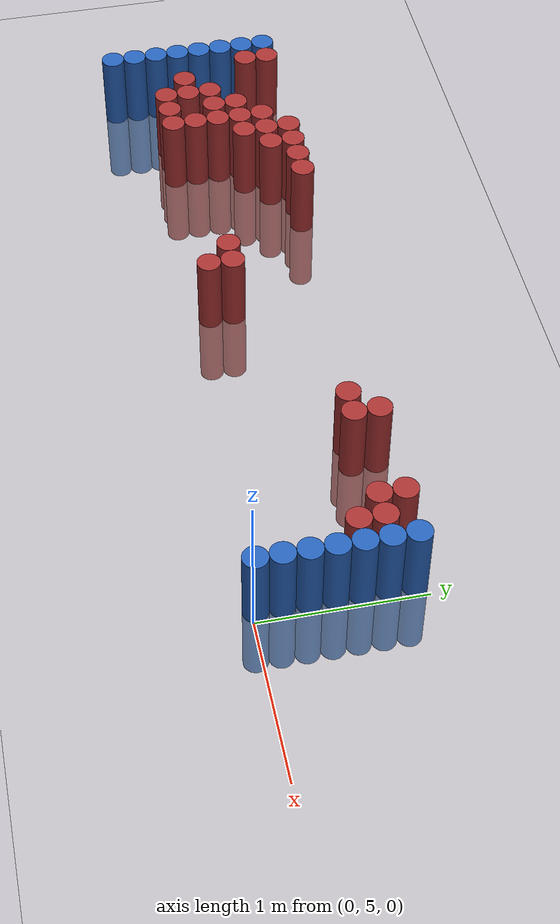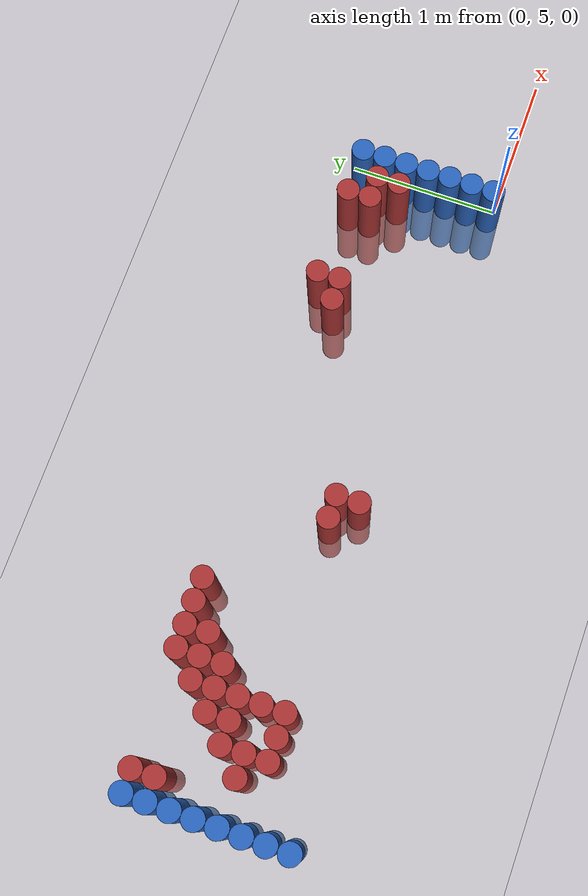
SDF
<sdf version="1.6">
 <world name="default">
  <model name="ground_plane">
   <static>1</static>
   <link name="link">
    <collision name="collision">
     <geometry><plane><normal>0 0 1</normal><size>100 100</size></plane></geometry>
     <surface><friction><ode><mu>100</mu><mu2>50</mu2></ode></friction></surface>
    </collision>
    <visual name="visual">
     <cast_shadows>0</cast_shadows>
     <geometry><plane><normal>0 0 1</normal><size>100 100</size></plane></geometry>
     <material>
      <script><uri>file://media/materials/scripts/gazebo.material</uri><name>Gazebo/Grey</name></script>
     </material>
    </visual>
   </link>
  </model>
  <model name="unit_cylinder_93">
   <static>1</static>
   <pose>-4.425000 4.875000 0.000000 0.000000 0.000000 0.000000</pose>
   <link name="link">
    <inertial>
     <mass>1</mass>
     <inertia><ixx>0.145833</ixx><ixy>0</ixy><ixz>0</ixz><iyy>0.145833</iyy><iyz>0</iyz><izz>0.125</izz></inertia>
    </inertial>
    <collision name="collision">
     <geometry><cylinder><radius>0.075000</radius><length>1</length></cylinder></geometry>
    </collision>
    <visual name="visual">
     <geometry><cylinder><radius>0.075000</radius><length>1</length></cylinder></geometry>
     <material>
      <ambient>0.152000 0.379000 0.720000 1</ambient>
      <diffuse>0.152000 0.379000 0.720000 1</diffuse>
     </material>
     <material>
      <script><name>Gazebo/Grey</name><uri>file://media/materials/scripts/gazebo.material</uri></script>
     </material>
    </visual>
   </link>
  </model>
  <model name="unit_cylinder_94">
   <static>1</static>
   <pose>-0.075000 5.025000 0.000000 0.000000 0.000000 0.000000</pose>
   <link name="link">
    <inertial>
     <mass>1</mass>
     <inertia><ixx>0.145833</ixx><ixy>0</ixy><ixz>0</ixz><iyy>0.145833</iyy><iyz>0</iyz><izz>0.125</izz></inertia>
    </inertial>
    <collision name="collision">
     <geometry><cylinder><radius>0.075000</radius><length>1</length></cylinder></geometry>
    </collision>
    <visual name="visual">
     <geometry><cylinder><radius>0.075000</radius><length>1</length></cylinder></geometry>
     <material>
      <ambient>0.152000 0.379000 0.720000 1</ambient>
      <diffuse>0.152000 0.379000 0.720000 1</diffuse>
     </material>
     <material>
      <script><name>Gazebo/Grey</name><uri>file://media/materials/scripts/gazebo.material</uri></script>
     </material>
    </visual>
   </link>
  </model>
  <model name="unit_cylinder_95">
   <static>1</static>
   <pose>-4.425000 5.025000 0.000000 0.000000 0.000000 0.000000</pose>
   <link name="link">
    <inertial>
     <mass>1</mass>
     <inertia><ixx>0.145833</ixx><ixy>0</ixy><ixz>0</ixz><iyy>0.145833</iyy><iyz>0</iyz><izz>0.125</izz></inertia>
    </inertial>
    <collision name="collision">
     <geometry><cylinder><radius>0.075000</radius><length>1</length></cylinder></geometry>
    </collision>
    <visual name="visual">
     <geometry><cylinder><radius>0.075000</radius><length>1</length></cylinder></geometry>
     <material>
      <ambient>0.152000 0.379000 0.720000 1</ambient>
      <diffuse>0.152000 0.379000 0.720000 1</diffuse>
     </material>
     <material>
      <script><name>Gazebo/Grey</name><uri>file://media/materials/scripts/gazebo.material</uri></script>
     </material>
    </visual>
   </link>
  </model>
  <model name="unit_cylinder_96">
   <static>1</static>
   <pose>-4.425000 5.175000 0.000000 0.000000 0.000000 0.000000</pose>
   <link name="link">
    <inertial>
     <mass>1</mass>
     <inertia><ixx>0.145833</ixx><ixy>0</ixy><ixz>0</ixz><iyy>0.145833</iyy><iyz>0</iyz><izz>0.125</izz></inertia>
    </inertial>
    <collision name="collision">
     <geometry><cylinder><radius>0.075000</radius><length>1</length></cylinder></geometry>
    </collision>
    <visual name="visual">
     <geometry><cylinder><radius>0.075000</radius><length>1</length></cylinder></geometry>
     <material>
      <ambient>0.152000 0.379000 0.720000 1</ambient>
      <diffuse>0.152000 0.379000 0.720000 1</diffuse>
     </material>
     <material>
      <script><name>Gazebo/Grey</name><uri>file://media/materials/scripts/gazebo.material</uri></script>
     </material>
    </visual>
   </link>
  </model>
  <model name="unit_cylinder_97">
   <static>1</static>
   <pose>-4.425000 5.325000 0.000000 0.000000 0.000000 0.000000</pose>
   <link name="link">
    <inertial>
     <mass>1</mass>
     <inertia><ixx>0.145833</ixx><ixy>0</ixy><ixz>0</ixz><iyy>0.145833</iyy><iyz>0</iyz><izz>0.125</izz></inertia>
    </inertial>
    <collision name="collision">
     <geometry><cylinder><radius>0.075000</radius><length>1</length></cylinder></geometry>
    </collision>
    <visual name="visual">
     <geometry><cylinder><radius>0.075000</radius><length>1</length></cylinder></geometry>
     <material>
      <ambient>0.152000 0.379000 0.720000 1</ambient>
      <diffuse>0.152000 0.379000 0.720000 1</diffuse>
     </material>
     <material>
      <script><name>Gazebo/Grey</name><uri>file://media/materials/scripts/gazebo.material</uri></script>
     </material>
    </visual>
   </link>
  </model>
  <model name="unit_cylinder_98">
   <static>1</static>
   <pose>-4.425000 5.475000 0.000000 0.000000 0.000000 0.000000</pose>
   <link name="link">
    <inertial>
     <mass>1</mass>
     <inertia><ixx>0.145833</ixx><ixy>0</ixy><ixz>0</ixz><iyy>0.145833</iyy><iyz>0</iyz><izz>0.125</izz></inertia>
    </inertial>
    <collision name="collision">
     <geometry><cylinder><radius>0.075000</radius><length>1</length></cylinder></geometry>
    </collision>
    <visual name="visual">
     <geometry><cylinder><radius>0.075000</radius><length>1</length></cylinder></geometry>
     <material>
      <ambient>0.152000 0.379000 0.720000 1</ambient>
      <diffuse>0.152000 0.379000 0.720000 1</diffuse>
     </material>
     <material>
      <script><name>Gazebo/Grey</name><uri>file://media/materials/scripts/gazebo.material</uri></script>
     </material>
    </visual>
   </link>
  </model>
  <model name="unit_cylinder_99">
   <static>1</static>
   <pose>-4.425000 5.625000 0.000000 0.000000 0.000000 0.000000</pose>
   <link name="link">
    <inertial>
     <mass>1</mass>
     <inertia><ixx>0.145833</ixx><ixy>0</ixy><ixz>0</ixz><iyy>0.145833</iyy><iyz>0</iyz><izz>0.125</izz></inertia>
    </inertial>
    <collision name="collision">
     <geometry><cylinder><radius>0.075000</radius><length>1</length></cylinder></geometry>
    </collision>
    <visual name="visual">
     <geometry><cylinder><radius>0.075000</radius><length>1</length></cylinder></geometry>
     <material>
      <ambient>0.152000 0.379000 0.720000 1</ambient>
      <diffuse>0.152000 0.379000 0.720000 1</diffuse>
     </material>
     <material>
      <script><name>Gazebo/Grey</name><uri>file://media/materials/scripts/gazebo.material</uri></script>
     </material>
    </visual>
   </link>
  </model>
  <model name="unit_cylinder_100">
   <static>1</static>
   <pose>-4.425000 5.775000 0.000000 0.000000 0.000000 0.000000</pose>
   <link name="link">
    <inertial>
     <mass>1</mass>
     <inertia><ixx>0.145833</ixx><ixy>0</ixy><ixz>0</ixz><iyy>0.145833</iyy><iyz>0</iyz><izz>0.125</izz></inertia>
    </inertial>
    <collision name="collision">
     <geometry><cylinder><radius>0.075000</radius><length>1</length></cylinder></geometry>
    </collision>
    <visual name="visual">
     <geometry><cylinder><radius>0.075000</radius><length>1</length></cylinder></geometry>
     <material>
      <ambient>0.152000 0.379000 0.720000 1</ambient>
      <diffuse>0.152000 0.379000 0.720000 1</diffuse>
     </material>
     <material>
      <script><name>Gazebo/Grey</name><uri>file://media/materials/scripts/gazebo.material</uri></script>
     </material>
    </visual>
   </link>
  </model>
  <model name="unit_cylinder_101">
   <static>1</static>
   <pose>-4.425000 5.925000 0.000000 0.000000 0.000000 0.000000</pose>
   <link name="link">
    <inertial>
     <mass>1</mass>
     <inertia><ixx>0.145833</ixx><ixy>0</ixy><ixz>0</ixz><iyy>0.145833</iyy><iyz>0</iyz><izz>0.125</izz></inertia>
    </inertial>
    <collision name="collision">
     <geometry><cylinder><radius>0.075000</radius><length>1</length></cylinder></geometry>
    </collision>
    <visual name="visual">
     <geometry><cylinder><radius>0.075000</radius><length>1</length></cylinder></geometry>
     <material>
      <ambient>0.152000 0.379000 0.720000 1</ambient>
      <diffuse>0.152000 0.379000 0.720000 1</diffuse>
     </material>
     <material>
      <script><name>Gazebo/Grey</name><uri>file://media/materials/scripts/gazebo.material</uri></script>
     </material>
    </visual>
   </link>
  </model>
  <model name="unit_cylinder_126">
   <static>1</static>
   <pose>-4.275000 5.775000 0.000000 0.000000 0.000000 0.000000</pose>
   <link name="link">
    <inertial>
     <mass>1</mass>
     <inertia><ixx>0.145833</ixx><ixy>0</ixy><ixz>0</ixz><iyy>0.145833</iyy><iyz>0</iyz><izz>0.125</izz></inertia>
    </inertial>
    <collision name="collision">
     <geometry><cylinder><radius>0.075000</radius><length>1</length></cylinder></geometry>
    </collision>
    <visual name="visual">
     <geometry><cylinder><radius>0.075000</radius><length>1</length></cylinder></geometry>
     <material>
      <ambient>0.648000 0.192000 0.192000 1</ambient>
      <diffuse>0.648000 0.192000 0.192000 1</diffuse>
     </material>
     <material>
      <script><name>Gazebo/Grey</name><uri>file://media/materials/scripts/gazebo.material</uri></script>
     </material>
    </visual>
   </link>
  </model>
  <model name="unit_cylinder_127">
   <static>1</static>
   <pose>-4.275000 5.925000 0.000000 0.000000 0.000000 0.000000</pose>
   <link name="link">
    <inertial>
     <mass>1</mass>
     <inertia><ixx>0.145833</ixx><ixy>0</ixy><ixz>0</ixz><iyy>0.145833</iyy><iyz>0</iyz><izz>0.125</izz></inertia>
    </inertial>
    <collision name="collision">
     <geometry><cylinder><radius>0.075000</radius><length>1</length></cylinder></geometry>
    </collision>
    <visual name="visual">
     <geometry><cylinder><radius>0.075000</radius><length>1</length></cylinder></geometry>
     <material>
      <ambient>0.648000 0.192000 0.192000 1</ambient>
      <diffuse>0.648000 0.192000 0.192000 1</diffuse>
     </material>
     <material>
      <script><name>Gazebo/Grey</name><uri>file://media/materials/scripts/gazebo.material</uri></script>
     </material>
    </visual>
   </link>
  </model>
  <model name="unit_cylinder_138">
   <static>1</static>
   <pose>-4.125000 5.325000 0.000000 0.000000 0.000000 0.000000</pose>
   <link name="link">
    <inertial>
     <mass>1</mass>
     <inertia><ixx>0.145833</ixx><ixy>0</ixy><ixz>0</ixz><iyy>0.145833</iyy><iyz>0</iyz><izz>0.125</izz></inertia>
    </inertial>
    <collision name="collision">
     <geometry><cylinder><radius>0.075000</radius><length>1</length></cylinder></geometry>
    </collision>
    <visual name="visual">
     <geometry><cylinder><radius>0.075000</radius><length>1</length></cylinder></geometry>
     <material>
      <ambient>0.648000 0.192000 0.192000 1</ambient>
      <diffuse>0.648000 0.192000 0.192000 1</diffuse>
     </material>
     <material>
      <script><name>Gazebo/Grey</name><uri>file://media/materials/scripts/gazebo.material</uri></script>
     </material>
    </visual>
   </link>
  </model>
  <model name="unit_cylinder_146">
   <static>1</static>
   <pose>-3.975000 5.175000 0.000000 0.000000 0.000000 0.000000</pose>
   <link name="link">
    <inertial>
     <mass>1</mass>
     <inertia><ixx>0.145833</ixx><ixy>0</ixy><ixz>0</ixz><iyy>0.145833</iyy><iyz>0</iyz><izz>0.125</izz></inertia>
    </inertial>
    <collision name="collision">
     <geometry><cylinder><radius>0.075000</radius><length>1</length></cylinder></geometry>
    </collision>
    <visual name="visual">
     <geometry><cylinder><radius>0.075000</radius><length>1</length></cylinder></geometry>
     <material>
      <ambient>0.648000 0.192000 0.192000 1</ambient>
      <diffuse>0.648000 0.192000 0.192000 1</diffuse>
     </material>
     <material>
      <script><name>Gazebo/Grey</name><uri>file://media/materials/scripts/gazebo.material</uri></script>
     </material>
    </visual>
   </link>
  </model>
  <model name="unit_cylinder_147">
   <static>1</static>
   <pose>-3.975000 5.325000 0.000000 0.000000 0.000000 0.000000</pose>
   <link name="link">
    <inertial>
     <mass>1</mass>
     <inertia><ixx>0.145833</ixx><ixy>0</ixy><ixz>0</ixz><iyy>0.145833</iyy><iyz>0</iyz><izz>0.125</izz></inertia>
    </inertial>
    <collision name="collision">
     <geometry><cylinder><radius>0.075000</radius><length>1</length></cylinder></geometry>
    </collision>
    <visual name="visual">
     <geometry><cylinder><radius>0.075000</radius><length>1</length></cylinder></geometry>
     <material>
      <ambient>0.648000 0.192000 0.192000 1</ambient>
      <diffuse>0.648000 0.192000 0.192000 1</diffuse>
     </material>
     <material>
      <script><name>Gazebo/Grey</name><uri>file://media/materials/scripts/gazebo.material</uri></script>
     </material>
    </visual>
   </link>
  </model>
  <model name="unit_cylinder_148">
   <static>1</static>
   <pose>-3.975000 5.475000 0.000000 0.000000 0.000000 0.000000</pose>
   <link name="link">
    <inertial>
     <mass>1</mass>
     <inertia><ixx>0.145833</ixx><ixy>0</ixy><ixz>0</ixz><iyy>0.145833</iyy><iyz>0</iyz><izz>0.125</izz></inertia>
    </inertial>
    <collision name="collision">
     <geometry><cylinder><radius>0.075000</radius><length>1</length></cylinder></geometry>
    </collision>
    <visual name="visual">
     <geometry><cylinder><radius>0.075000</radius><length>1</length></cylinder></geometry>
     <material>
      <ambient>0.648000 0.192000 0.192000 1</ambient>
      <diffuse>0.648000 0.192000 0.192000 1</diffuse>
     </material>
     <material>
      <script><name>Gazebo/Grey</name><uri>file://media/materials/scripts/gazebo.material</uri></script>
     </material>
    </visual>
   </link>
  </model>
  <model name="unit_cylinder_151">
   <static>1</static>
   <pose>-3.825000 5.175000 0.000000 0.000000 0.000000 0.000000</pose>
   <link name="link">
    <inertial>
     <mass>1</mass>
     <inertia><ixx>0.145833</ixx><ixy>0</ixy><ixz>0</ixz><iyy>0.145833</iyy><iyz>0</iyz><izz>0.125</izz></inertia>
    </inertial>
    <collision name="collision">
     <geometry><cylinder><radius>0.075000</radius><length>1</length></cylinder></geometry>
    </collision>
    <visual name="visual">
     <geometry><cylinder><radius>0.075000</radius><length>1</length></cylinder></geometry>
     <material>
      <ambient>0.648000 0.192000 0.192000 1</ambient>
      <diffuse>0.648000 0.192000 0.192000 1</diffuse>
     </material>
     <material>
      <script><name>Gazebo/Grey</name><uri>file://media/materials/scripts/gazebo.material</uri></script>
     </material>
    </visual>
   </link>
  </model>
  <model name="unit_cylinder_152">
   <static>1</static>
   <pose>-3.825000 5.475000 0.000000 0.000000 0.000000 0.000000</pose>
   <link name="link">
    <inertial>
     <mass>1</mass>
     <inertia><ixx>0.145833</ixx><ixy>0</ixy><ixz>0</ixz><iyy>0.145833</iyy><iyz>0</iyz><izz>0.125</izz></inertia>
    </inertial>
    <collision name="collision">
     <geometry><cylinder><radius>0.075000</radius><length>1</length></cylinder></geometry>
    </collision>
    <visual name="visual">
     <geometry><cylinder><radius>0.075000</radius><length>1</length></cylinder></geometry>
     <material>
      <ambient>0.648000 0.192000 0.192000 1</ambient>
      <diffuse>0.648000 0.192000 0.192000 1</diffuse>
     </material>
     <material>
      <script><name>Gazebo/Grey</name><uri>file://media/materials/scripts/gazebo.material</uri></script>
     </material>
    </visual>
   </link>
  </model>
  <model name="unit_cylinder_153">
   <static>1</static>
   <pose>-3.825000 5.625000 0.000000 0.000000 0.000000 0.000000</pose>
   <link name="link">
    <inertial>
     <mass>1</mass>
     <inertia><ixx>0.145833</ixx><ixy>0</ixy><ixz>0</ixz><iyy>0.145833</iyy><iyz>0</iyz><izz>0.125</izz></inertia>
    </inertial>
    <collision name="collision">
     <geometry><cylinder><radius>0.075000</radius><length>1</length></cylinder></geometry>
    </collision>
    <visual name="visual">
     <geometry><cylinder><radius>0.075000</radius><length>1</length></cylinder></geometry>
     <material>
      <ambient>0.648000 0.192000 0.192000 1</ambient>
      <diffuse>0.648000 0.192000 0.192000 1</diffuse>
     </material>
     <material>
      <script><name>Gazebo/Grey</name><uri>file://media/materials/scripts/gazebo.material</uri></script>
     </material>
    </visual>
   </link>
  </model>
  <model name="unit_cylinder_154">
   <static>1</static>
   <pose>-3.675000 5.175000 0.000000 0.000000 0.000000 0.000000</pose>
   <link name="link">
    <inertial>
     <mass>1</mass>
     <inertia><ixx>0.145833</ixx><ixy>0</ixy><ixz>0</ixz><iyy>0.145833</iyy><iyz>0</iyz><izz>0.125</izz></inertia>
    </inertial>
    <collision name="collision">
     <geometry><cylinder><radius>0.075000</radius><length>1</length></cylinder></geometry>
    </collision>
    <visual name="visual">
     <geometry><cylinder><radius>0.075000</radius><length>1</length></cylinder></geometry>
     <material>
      <ambient>0.648000 0.192000 0.192000 1</ambient>
      <diffuse>0.648000 0.192000 0.192000 1</diffuse>
     </material>
     <material>
      <script><name>Gazebo/Grey</name><uri>file://media/materials/scripts/gazebo.material</uri></script>
     </material>
    </visual>
   </link>
  </model>
  <model name="unit_cylinder_155">
   <static>1</static>
   <pose>-3.675000 5.325000 0.000000 0.000000 0.000000 0.000000</pose>
   <link name="link">
    <inertial>
     <mass>1</mass>
     <inertia><ixx>0.145833</ixx><ixy>0</ixy><ixz>0</ixz><iyy>0.145833</iyy><iyz>0</iyz><izz>0.125</izz></inertia>
    </inertial>
    <collision name="collision">
     <geometry><cylinder><radius>0.075000</radius><length>1</length></cylinder></geometry>
    </collision>
    <visual name="visual">
     <geometry><cylinder><radius>0.075000</radius><length>1</length></cylinder></geometry>
     <material>
      <ambient>0.648000 0.192000 0.192000 1</ambient>
      <diffuse>0.648000 0.192000 0.192000 1</diffuse>
     </material>
     <material>
      <script><name>Gazebo/Grey</name><uri>file://media/materials/scripts/gazebo.material</uri></script>
     </material>
    </visual>
   </link>
  </model>
  <model name="unit_cylinder_156">
   <static>1</static>
   <pose>-3.675000 5.475000 0.000000 0.000000 0.000000 0.000000</pose>
   <link name="link">
    <inertial>
     <mass>1</mass>
     <inertia><ixx>0.145833</ixx><ixy>0</ixy><ixz>0</ixz><iyy>0.145833</iyy><iyz>0</iyz><izz>0.125</izz></inertia>
    </inertial>
    <collision name="collision">
     <geometry><cylinder><radius>0.075000</radius><length>1</length></cylinder></geometry>
    </collision>
    <visual name="visual">
     <geometry><cylinder><radius>0.075000</radius><length>1</length></cylinder></geometry>
     <material>
      <ambient>0.648000 0.192000 0.192000 1</ambient>
      <diffuse>0.648000 0.192000 0.192000 1</diffuse>
     </material>
     <material>
      <script><name>Gazebo/Grey</name><uri>file://media/materials/scripts/gazebo.material</uri></script>
     </material>
    </visual>
   </link>
  </model>
  <model name="unit_cylinder_157">
   <static>1</static>
   <pose>-3.675000 5.625000 0.000000 0.000000 0.000000 0.000000</pose>
   <link name="link">
    <inertial>
     <mass>1</mass>
     <inertia><ixx>0.145833</ixx><ixy>0</ixy><ixz>0</ixz><iyy>0.145833</iyy><iyz>0</iyz><izz>0.125</izz></inertia>
    </inertial>
    <collision name="collision">
     <geometry><cylinder><radius>0.075000</radius><length>1</length></cylinder></geometry>
    </collision>
    <visual name="visual">
     <geometry><cylinder><radius>0.075000</radius><length>1</length></cylinder></geometry>
     <material>
      <ambient>0.648000 0.192000 0.192000 1</ambient>
      <diffuse>0.648000 0.192000 0.192000 1</diffuse>
     </material>
     <material>
      <script><name>Gazebo/Grey</name><uri>file://media/materials/scripts/gazebo.material</uri></script>
     </material>
    </visual>
   </link>
  </model>
  <model name="unit_cylinder_158">
   <static>1</static>
   <pose>-3.675000 5.775000 0.000000 0.000000 0.000000 0.000000</pose>
   <link name="link">
    <inertial>
     <mass>1</mass>
     <inertia><ixx>0.145833</ixx><ixy>0</ixy><ixz>0</ixz><iyy>0.145833</iyy><iyz>0</iyz><izz>0.125</izz></inertia>
    </inertial>
    <collision name="collision">
     <geometry><cylinder><radius>0.075000</radius><length>1</length></cylinder></geometry>
    </collision>
    <visual name="visual">
     <geometry><cylinder><radius>0.075000</radius><length>1</length></cylinder></geometry>
     <material>
      <ambient>0.648000 0.192000 0.192000 1</ambient>
      <diffuse>0.648000 0.192000 0.192000 1</diffuse>
     </material>
     <material>
      <script><name>Gazebo/Grey</name><uri>file://media/materials/scripts/gazebo.material</uri></script>
     </material>
    </visual>
   </link>
  </model>
  <model name="unit_cylinder_159">
   <static>1</static>
   <pose>-3.525000 5.625000 0.000000 0.000000 0.000000 0.000000</pose>
   <link name="link">
    <inertial>
     <mass>1</mass>
     <inertia><ixx>0.145833</ixx><ixy>0</ixy><ixz>0</ixz><iyy>0.145833</iyy><iyz>0</iyz><izz>0.125</izz></inertia>
    </inertial>
    <collision name="collision">
     <geometry><cylinder><radius>0.075000</radius><length>1</length></cylinder></geometry>
    </collision>
    <visual name="visual">
     <geometry><cylinder><radius>0.075000</radius><length>1</length></cylinder></geometry>
     <material>
      <ambient>0.648000 0.192000 0.192000 1</ambient>
      <diffuse>0.648000 0.192000 0.192000 1</diffuse>
     </material>
     <material>
      <script><name>Gazebo/Grey</name><uri>file://media/materials/scripts/gazebo.material</uri></script>
     </material>
    </visual>
   </link>
  </model>
  <model name="unit_cylinder_160">
   <static>1</static>
   <pose>-3.525000 5.775000 0.000000 0.000000 0.000000 0.000000</pose>
   <link name="link">
    <inertial>
     <mass>1</mass>
     <inertia><ixx>0.145833</ixx><ixy>0</ixy><ixz>0</ixz><iyy>0.145833</iyy><iyz>0</iyz><izz>0.125</izz></inertia>
    </inertial>
    <collision name="collision">
     <geometry><cylinder><radius>0.075000</radius><length>1</length></cylinder></geometry>
    </collision>
    <visual name="visual">
     <geometry><cylinder><radius>0.075000</radius><length>1</length></cylinder></geometry>
     <material>
      <ambient>0.648000 0.192000 0.192000 1</ambient>
      <diffuse>0.648000 0.192000 0.192000 1</diffuse>
     </material>
     <material>
      <script><name>Gazebo/Grey</name><uri>file://media/materials/scripts/gazebo.material</uri></script>
     </material>
    </visual>
   </link>
  </model>
  <model name="unit_cylinder_161">
   <static>1</static>
   <pose>-3.525000 5.925000 0.000000 0.000000 0.000000 0.000000</pose>
   <link name="link">
    <inertial>
     <mass>1</mass>
     <inertia><ixx>0.145833</ixx><ixy>0</ixy><ixz>0</ixz><iyy>0.145833</iyy><iyz>0</iyz><izz>0.125</izz></inertia>
    </inertial>
    <collision name="collision">
     <geometry><cylinder><radius>0.075000</radius><length>1</length></cylinder></geometry>
    </collision>
    <visual name="visual">
     <geometry><cylinder><radius>0.075000</radius><length>1</length></cylinder></geometry>
     <material>
      <ambient>0.648000 0.192000 0.192000 1</ambient>
      <diffuse>0.648000 0.192000 0.192000 1</diffuse>
     </material>
     <material>
      <script><name>Gazebo/Grey</name><uri>file://media/materials/scripts/gazebo.material</uri></script>
     </material>
    </visual>
   </link>
  </model>
  <model name="unit_cylinder_166">
   <static>1</static>
   <pose>-3.375000 5.775000 0.000000 0.000000 0.000000 0.000000</pose>
   <link name="link">
    <inertial>
     <mass>1</mass>
     <inertia><ixx>0.145833</ixx><ixy>0</ixy><ixz>0</ixz><iyy>0.145833</iyy><iyz>0</iyz><izz>0.125</izz></inertia>
    </inertial>
    <collision name="collision">
     <geometry><cylinder><radius>0.075000</radius><length>1</length></cylinder></geometry>
    </collision>
    <visual name="visual">
     <geometry><cylinder><radius>0.075000</radius><length>1</length></cylinder></geometry>
     <material>
      <ambient>0.648000 0.192000 0.192000 1</ambient>
      <diffuse>0.648000 0.192000 0.192000 1</diffuse>
     </material>
     <material>
      <script><name>Gazebo/Grey</name><uri>file://media/materials/scripts/gazebo.material</uri></script>
     </material>
    </visual>
   </link>
  </model>
  <model name="unit_cylinder_167">
   <static>1</static>
   <pose>-3.375000 5.925000 0.000000 0.000000 0.000000 0.000000</pose>
   <link name="link">
    <inertial>
     <mass>1</mass>
     <inertia><ixx>0.145833</ixx><ixy>0</ixy><ixz>0</ixz><iyy>0.145833</iyy><iyz>0</iyz><izz>0.125</izz></inertia>
    </inertial>
    <collision name="collision">
     <geometry><cylinder><radius>0.075000</radius><length>1</length></cylinder></geometry>
    </collision>
    <visual name="visual">
     <geometry><cylinder><radius>0.075000</radius><length>1</length></cylinder></geometry>
     <material>
      <ambient>0.648000 0.192000 0.192000 1</ambient>
      <diffuse>0.648000 0.192000 0.192000 1</diffuse>
     </material>
     <material>
      <script><name>Gazebo/Grey</name><uri>file://media/materials/scripts/gazebo.material</uri></script>
     </material>
    </visual>
   </link>
  </model>
  <model name="unit_cylinder_175">
   <static>1</static>
   <pose>-3.225000 5.925000 0.000000 0.000000 0.000000 0.000000</pose>
   <link name="link">
    <inertial>
     <mass>1</mass>
     <inertia><ixx>0.145833</ixx><ixy>0</ixy><ixz>0</ixz><iyy>0.145833</iyy><iyz>0</iyz><izz>0.125</izz></inertia>
    </inertial>
    <collision name="collision">
     <geometry><cylinder><radius>0.075000</radius><length>1</length></cylinder></geometry>
    </collision>
    <visual name="visual">
     <geometry><cylinder><radius>0.075000</radius><length>1</length></cylinder></geometry>
     <material>
      <ambient>0.648000 0.192000 0.192000 1</ambient>
      <diffuse>0.648000 0.192000 0.192000 1</diffuse>
     </material>
     <material>
      <script><name>Gazebo/Grey</name><uri>file://media/materials/scripts/gazebo.material</uri></script>
     </material>
    </visual>
   </link>
  </model>
  <model name="unit_cylinder_184">
   <static>1</static>
   <pose>-3.075000 5.925000 0.000000 0.000000 0.000000 0.000000</pose>
   <link name="link">
    <inertial>
     <mass>1</mass>
     <inertia><ixx>0.145833</ixx><ixy>0</ixy><ixz>0</ixz><iyy>0.145833</iyy><iyz>0</iyz><izz>0.125</izz></inertia>
    </inertial>
    <collision name="collision">
     <geometry><cylinder><radius>0.075000</radius><length>1</length></cylinder></geometry>
    </collision>
    <visual name="visual">
     <geometry><cylinder><radius>0.075000</radius><length>1</length></cylinder></geometry>
     <material>
      <ambient>0.648000 0.192000 0.192000 1</ambient>
      <diffuse>0.648000 0.192000 0.192000 1</diffuse>
     </material>
     <material>
      <script><name>Gazebo/Grey</name><uri>file://media/materials/scripts/gazebo.material</uri></script>
     </material>
    </visual>
   </link>
  </model>
  <model name="unit_cylinder_198">
   <static>1</static>
   <pose>-2.475000 5.325000 0.000000 0.000000 0.000000 0.000000</pose>
   <link name="link">
    <inertial>
     <mass>1</mass>
     <inertia><ixx>0.145833</ixx><ixy>0</ixy><ixz>0</ixz><iyy>0.145833</iyy><iyz>0</iyz><izz>0.125</izz></inertia>
    </inertial>
    <collision name="collision">
     <geometry><cylinder><radius>0.075000</radius><length>1</length></cylinder></geometry>
    </collision>
    <visual name="visual">
     <geometry><cylinder><radius>0.075000</radius><length>1</length></cylinder></geometry>
     <material>
      <ambient>0.648000 0.192000 0.192000 1</ambient>
      <diffuse>0.648000 0.192000 0.192000 1</diffuse>
     </material>
     <material>
      <script><name>Gazebo/Grey</name><uri>file://media/materials/scripts/gazebo.material</uri></script>
     </material>
    </visual>
   </link>
  </model>
  <model name="unit_cylinder_201">
   <static>1</static>
   <pose>-2.325000 5.175000 0.000000 0.000000 0.000000 0.000000</pose>
   <link name="link">
    <inertial>
     <mass>1</mass>
     <inertia><ixx>0.145833</ixx><ixy>0</ixy><ixz>0</ixz><iyy>0.145833</iyy><iyz>0</iyz><izz>0.125</izz></inertia>
    </inertial>
    <collision name="collision">
     <geometry><cylinder><radius>0.075000</radius><length>1</length></cylinder></geometry>
    </collision>
    <visual name="visual">
     <geometry><cylinder><radius>0.075000</radius><length>1</length></cylinder></geometry>
     <material>
      <ambient>0.648000 0.192000 0.192000 1</ambient>
      <diffuse>0.648000 0.192000 0.192000 1</diffuse>
     </material>
     <material>
      <script><name>Gazebo/Grey</name><uri>file://media/materials/scripts/gazebo.material</uri></script>
     </material>
    </visual>
   </link>
  </model>
  <model name="unit_cylinder_202">
   <static>1</static>
   <pose>-2.325000 5.325000 0.000000 0.000000 0.000000 0.000000</pose>
   <link name="link">
    <inertial>
     <mass>1</mass>
     <inertia><ixx>0.145833</ixx><ixy>0</ixy><ixz>0</ixz><iyy>0.145833</iyy><iyz>0</iyz><izz>0.125</izz></inertia>
    </inertial>
    <collision name="collision">
     <geometry><cylinder><radius>0.075000</radius><length>1</length></cylinder></geometry>
    </collision>
    <visual name="visual">
     <geometry><cylinder><radius>0.075000</radius><length>1</length></cylinder></geometry>
     <material>
      <ambient>0.648000 0.192000 0.192000 1</ambient>
      <diffuse>0.648000 0.192000 0.192000 1</diffuse>
     </material>
     <material>
      <script><name>Gazebo/Grey</name><uri>file://media/materials/scripts/gazebo.material</uri></script>
     </material>
    </visual>
   </link>
  </model>
  <model name="unit_cylinder_206">
   <static>1</static>
   <pose>-1.125000 5.775000 0.000000 0.000000 0.000000 0.000000</pose>
   <link name="link">
    <inertial>
     <mass>1</mass>
     <inertia><ixx>0.145833</ixx><ixy>0</ixy><ixz>0</ixz><iyy>0.145833</iyy><iyz>0</iyz><izz>0.125</izz></inertia>
    </inertial>
    <collision name="collision">
     <geometry><cylinder><radius>0.075000</radius><length>1</length></cylinder></geometry>
    </collision>
    <visual name="visual">
     <geometry><cylinder><radius>0.075000</radius><length>1</length></cylinder></geometry>
     <material>
      <ambient>0.648000 0.192000 0.192000 1</ambient>
      <diffuse>0.648000 0.192000 0.192000 1</diffuse>
     </material>
     <material>
      <script><name>Gazebo/Grey</name><uri>file://media/materials/scripts/gazebo.material</uri></script>
     </material>
    </visual>
   </link>
  </model>
  <model name="unit_cylinder_214">
   <static>1</static>
   <pose>-0.975000 5.775000 0.000000 0.000000 0.000000 0.000000</pose>
   <link name="link">
    <inertial>
     <mass>1</mass>
     <inertia><ixx>0.145833</ixx><ixy>0</ixy><ixz>0</ixz><iyy>0.145833</iyy><iyz>0</iyz><izz>0.125</izz></inertia>
    </inertial>
    <collision name="collision">
     <geometry><cylinder><radius>0.075000</radius><length>1</length></cylinder></geometry>
    </collision>
    <visual name="visual">
     <geometry><cylinder><radius>0.075000</radius><length>1</length></cylinder></geometry>
     <material>
      <ambient>0.648000 0.192000 0.192000 1</ambient>
      <diffuse>0.648000 0.192000 0.192000 1</diffuse>
     </material>
     <material>
      <script><name>Gazebo/Grey</name><uri>file://media/materials/scripts/gazebo.material</uri></script>
     </material>
    </visual>
   </link>
  </model>
  <model name="unit_cylinder_215">
   <static>1</static>
   <pose>-0.975000 5.925000 0.000000 0.000000 0.000000 0.000000</pose>
   <link name="link">
    <inertial>
     <mass>1</mass>
     <inertia><ixx>0.145833</ixx><ixy>0</ixy><ixz>0</ixz><iyy>0.145833</iyy><iyz>0</iyz><izz>0.125</izz></inertia>
    </inertial>
    <collision name="collision">
     <geometry><cylinder><radius>0.075000</radius><length>1</length></cylinder></geometry>
    </collision>
    <visual name="visual">
     <geometry><cylinder><radius>0.075000</radius><length>1</length></cylinder></geometry>
     <material>
      <ambient>0.648000 0.192000 0.192000 1</ambient>
      <diffuse>0.648000 0.192000 0.192000 1</diffuse>
     </material>
     <material>
      <script><name>Gazebo/Grey</name><uri>file://media/materials/scripts/gazebo.material</uri></script>
     </material>
    </visual>
   </link>
  </model>
  <model name="unit_cylinder_227">
   <static>1</static>
   <pose>-0.375000 5.775000 0.000000 0.000000 0.000000 0.000000</pose>
   <link name="link">
    <inertial>
     <mass>1</mass>
     <inertia><ixx>0.145833</ixx><ixy>0</ixy><ixz>0</ixz><iyy>0.145833</iyy><iyz>0</iyz><izz>0.125</izz></inertia>
    </inertial>
    <collision name="collision">
     <geometry><cylinder><radius>0.075000</radius><length>1</length></cylinder></geometry>
    </collision>
    <visual name="visual">
     <geometry><cylinder><radius>0.075000</radius><length>1</length></cylinder></geometry>
     <material>
      <ambient>0.648000 0.192000 0.192000 1</ambient>
      <diffuse>0.648000 0.192000 0.192000 1</diffuse>
     </material>
     <material>
      <script><name>Gazebo/Grey</name><uri>file://media/materials/scripts/gazebo.material</uri></script>
     </material>
    </visual>
   </link>
  </model>
  <model name="unit_cylinder_228">
   <static>1</static>
   <pose>-0.375000 5.925000 0.000000 0.000000 0.000000 0.000000</pose>
   <link name="link">
    <inertial>
     <mass>1</mass>
     <inertia><ixx>0.145833</ixx><ixy>0</ixy><ixz>0</ixz><iyy>0.145833</iyy><iyz>0</iyz><izz>0.125</izz></inertia>
    </inertial>
    <collision name="collision">
     <geometry><cylinder><radius>0.075000</radius><length>1</length></cylinder></geometry>
    </collision>
    <visual name="visual">
     <geometry><cylinder><radius>0.075000</radius><length>1</length></cylinder></geometry>
     <material>
      <ambient>0.648000 0.192000 0.192000 1</ambient>
      <diffuse>0.648000 0.192000 0.192000 1</diffuse>
     </material>
     <material>
      <script><name>Gazebo/Grey</name><uri>file://media/materials/scripts/gazebo.material</uri></script>
     </material>
    </visual>
   </link>
  </model>
  <model name="unit_cylinder_235">
   <static>1</static>
   <pose>-0.225000 5.625000 0.000000 0.000000 0.000000 0.000000</pose>
   <link name="link">
    <inertial>
     <mass>1</mass>
     <inertia><ixx>0.145833</ixx><ixy>0</ixy><ixz>0</ixz><iyy>0.145833</iyy><iyz>0</iyz><izz>0.125</izz></inertia>
    </inertial>
    <collision name="collision">
     <geometry><cylinder><radius>0.075000</radius><length>1</length></cylinder></geometry>
    </collision>
    <visual name="visual">
     <geometry><cylinder><radius>0.075000</radius><length>1</length></cylinder></geometry>
     <material>
      <ambient>0.648000 0.192000 0.192000 1</ambient>
      <diffuse>0.648000 0.192000 0.192000 1</diffuse>
     </material>
     <material>
      <script><name>Gazebo/Grey</name><uri>file://media/materials/scripts/gazebo.material</uri></script>
     </material>
    </visual>
   </link>
  </model>
  <model name="unit_cylinder_236">
   <static>1</static>
   <pose>-0.225000 5.775000 0.000000 0.000000 0.000000 0.000000</pose>
   <link name="link">
    <inertial>
     <mass>1</mass>
     <inertia><ixx>0.145833</ixx><ixy>0</ixy><ixz>0</ixz><iyy>0.145833</iyy><iyz>0</iyz><izz>0.125</izz></inertia>
    </inertial>
    <collision name="collision">
     <geometry><cylinder><radius>0.075000</radius><length>1</length></cylinder></geometry>
    </collision>
    <visual name="visual">
     <geometry><cylinder><radius>0.075000</radius><length>1</length></cylinder></geometry>
     <material>
      <ambient>0.648000 0.192000 0.192000 1</ambient>
      <diffuse>0.648000 0.192000 0.192000 1</diffuse>
     </material>
     <material>
      <script><name>Gazebo/Grey</name><uri>file://media/materials/scripts/gazebo.material</uri></script>
     </material>
    </visual>
   </link>
  </model>
  <model name="unit_cylinder_248">
   <static>1</static>
   <pose>-0.075000 5.175000 0.000000 0.000000 0.000000 0.000000</pose>
   <link name="link">
    <inertial>
     <mass>1</mass>
     <inertia><ixx>0.145833</ixx><ixy>0</ixy><ixz>0</ixz><iyy>0.145833</iyy><iyz>0</iyz><izz>0.125</izz></inertia>
    </inertial>
    <collision name="collision">
     <geometry><cylinder><radius>0.075000</radius><length>1</length></cylinder></geometry>
    </collision>
    <visual name="visual">
     <geometry><cylinder><radius>0.075000</radius><length>1</length></cylinder></geometry>
     <material>
      <ambient>0.152000 0.379000 0.720000 1</ambient>
      <diffuse>0.152000 0.379000 0.720000 1</diffuse>
     </material>
     <material>
      <script><name>Gazebo/Grey</name><uri>file://media/materials/scripts/gazebo.material</uri></script>
     </material>
    </visual>
   </link>
  </model>
  <model name="unit_cylinder_249">
   <static>1</static>
   <pose>-0.075000 5.325000 0.000000 0.000000 0.000000 0.000000</pose>
   <link name="link">
    <inertial>
     <mass>1</mass>
     <inertia><ixx>0.145833</ixx><ixy>0</ixy><ixz>0</ixz><iyy>0.145833</iyy><iyz>0</iyz><izz>0.125</izz></inertia>
    </inertial>
    <collision name="collision">
     <geometry><cylinder><radius>0.075000</radius><length>1</length></cylinder></geometry>
    </collision>
    <visual name="visual">
     <geometry><cylinder><radius>0.075000</radius><length>1</length></cylinder></geometry>
     <material>
      <ambient>0.152000 0.379000 0.720000 1</ambient>
      <diffuse>0.152000 0.379000 0.720000 1</diffuse>
     </material>
     <material>
      <script><name>Gazebo/Grey</name><uri>file://media/materials/scripts/gazebo.material</uri></script>
     </material>
    </visual>
   </link>
  </model>
  <model name="unit_cylinder_250">
   <static>1</static>
   <pose>-0.075000 5.475000 0.000000 0.000000 0.000000 0.000000</pose>
   <link name="link">
    <inertial>
     <mass>1</mass>
     <inertia><ixx>0.145833</ixx><ixy>0</ixy><ixz>0</ixz><iyy>0.145833</iyy><iyz>0</iyz><izz>0.125</izz></inertia>
    </inertial>
    <collision name="collision">
     <geometry><cylinder><radius>0.075000</radius><length>1</length></cylinder></geometry>
    </collision>
    <visual name="visual">
     <geometry><cylinder><radius>0.075000</radius><length>1</length></cylinder></geometry>
     <material>
      <ambient>0.152000 0.379000 0.720000 1</ambient>
      <diffuse>0.152000 0.379000 0.720000 1</diffuse>
     </material>
     <material>
      <script><name>Gazebo/Grey</name><uri>file://media/materials/scripts/gazebo.material</uri></script>
     </material>
    </visual>
   </link>
  </model>
  <model name="unit_cylinder_251">
   <static>1</static>
   <pose>-0.075000 5.625000 0.000000 0.000000 0.000000 0.000000</pose>
   <link name="link">
    <inertial>
     <mass>1</mass>
     <inertia><ixx>0.145833</ixx><ixy>0</ixy><ixz>0</ixz><iyy>0.145833</iyy><iyz>0</iyz><izz>0.125</izz></inertia>
    </inertial>
    <collision name="collision">
     <geometry><cylinder><radius>0.075000</radius><length>1</length></cylinder></geometry>
    </collision>
    <visual name="visual">
     <geometry><cylinder><radius>0.075000</radius><length>1</length></cylinder></geometry>
     <material>
      <ambient>0.152000 0.379000 0.720000 1</ambient>
      <diffuse>0.152000 0.379000 0.720000 1</diffuse>
     </material>
     <material>
      <script><name>Gazebo/Grey</name><uri>file://media/materials/scripts/gazebo.material</uri></script>
     </material>
    </visual>
   </link>
  </model>
  <model name="unit_cylinder_252">
   <static>1</static>
   <pose>-0.075000 5.775000 0.000000 0.000000 0.000000 0.000000</pose>
   <link name="link">
    <inertial>
     <mass>1</mass>
     <inertia><ixx>0.145833</ixx><ixy>0</ixy><ixz>0</ixz><iyy>0.145833</iyy><iyz>0</iyz><izz>0.125</izz></inertia>
    </inertial>
    <collision name="collision">
     <geometry><cylinder><radius>0.075000</radius><length>1</length></cylinder></geometry>
    </collision>
    <visual name="visual">
     <geometry><cylinder><radius>0.075000</radius><length>1</length></cylinder></geometry>
     <material>
      <ambient>0.152000 0.379000 0.720000 1</ambient>
      <diffuse>0.152000 0.379000 0.720000 1</diffuse>
     </material>
     <material>
      <script><name>Gazebo/Grey</name><uri>file://media/materials/scripts/gazebo.material</uri></script>
     </material>
    </visual>
   </link>
  </model>
  <model name="unit_cylinder_253">
   <static>1</static>
   <pose>-0.075000 5.925000 0.000000 0.000000 0.000000 0.000000</pose>
   <link name="link">
    <inertial>
     <mass>1</mass>
     <inertia><ixx>0.145833</ixx><ixy>0</ixy><ixz>0</ixz><iyy>0.145833</iyy><iyz>0</iyz><izz>0.125</izz></inertia>
    </inertial>
    <collision name="collision">
     <geometry><cylinder><radius>0.075000</radius><length>1</length></cylinder></geometry>
    </collision>
    <visual name="visual">
     <geometry><cylinder><radius>0.075000</radius><length>1</length></cylinder></geometry>
     <material>
      <ambient>0.152000 0.379000 0.720000 1</ambient>
      <diffuse>0.152000 0.379000 0.720000 1</diffuse>
     </material>
     <material>
      <script><name>Gazebo/Grey</name><uri>file://media/materials/scripts/gazebo.material</uri></script>
     </material>
    </visual>
   </link>
  </model>
 </world>
</sdf>
